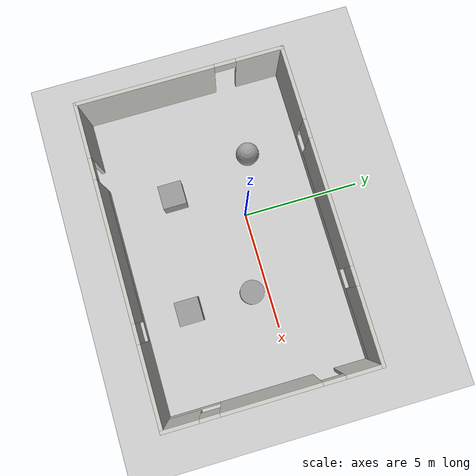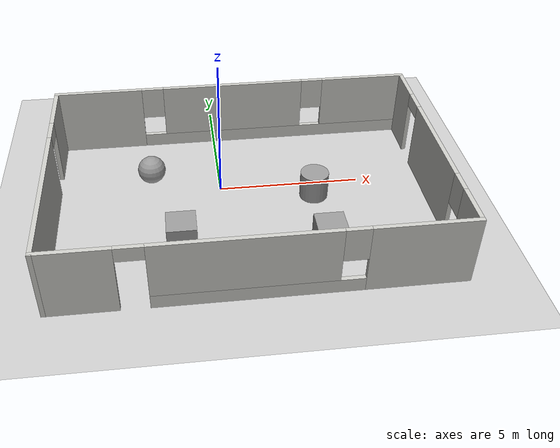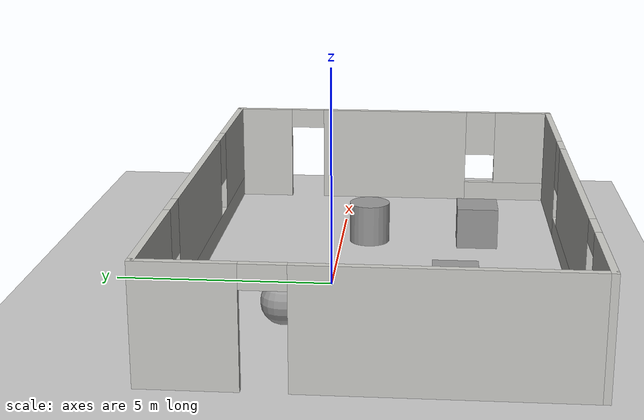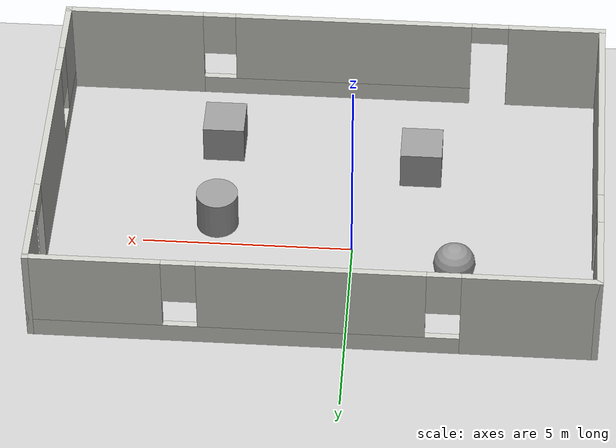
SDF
<sdf version="1.7">
 <world name="default">
  <light name="sun" type="directional">
   <pose>0 0 10 0 -0 0</pose>
   <diffuse>0.8 0.8 0.8 1</diffuse>
   <specular>0.2 0.2 0.2 1</specular>
   <attenuation>
    <range>1000</range>
    <constant>0.9</constant>
    <linear>0.01</linear>
    <quadratic>0.001</quadratic>
   </attenuation>
   <direction>-0.5 0.1 -0.9</direction>
   <spot><inner_angle>0</inner_angle><outer_angle>0</outer_angle><falloff>0</falloff></spot>
  </light>
  <model name="ground_plane">
   <static>1</static>
   <link name="link">
    <collision name="collision">
     <geometry><plane><normal>0 0 1</normal><size>100 100</size></plane></geometry>
     <surface><friction><ode><mu>100</mu><mu2>50</mu2></ode></friction></surface>
    </collision>
    <visual name="visual">
     <cast_shadows>0</cast_shadows>
     <geometry><plane><normal>0 0 1</normal><size>100 100</size></plane></geometry>
     <material>
      <script><uri>file://media/materials/scripts/gazebo.material</uri><name>Gazebo/Grey</name></script>
     </material>
    </visual>
   </link>
  </model>
  <gravity>0 0 -9.8</gravity>
  <magnetic_field>6e-06 2.3e-05 -4.2e-05</magnetic_field>
  <atmosphere type="adiabatic"/>
  <physics type="ode">
   <max_step_size>0.001</max_step_size>
   <real_time_factor>1</real_time_factor>
   <real_time_update_rate>1000</real_time_update_rate>
  </physics>
  <scene><ambient>0.4 0.4 0.4 1</ambient><background>0.7 0.7 0.7 1</background><shadows>1</shadows></scene>
  <audio><device>default</device></audio>
  <spherical_coordinates>
   <surface_model>EARTH_WGS84</surface_model>
   <latitude_deg>0</latitude_deg>
   <longitude_deg>0</longitude_deg>
   <elevation>0</elevation>
   <heading_deg>0</heading_deg>
  </spherical_coordinates>
  <model name="house_1">
   <pose>0.75701 -1.13036 0 0 -0 0</pose>
   <link name="Wall_11">
    <pose>6.55 0 0 0 -0 -1.5708</pose>
    <visual name="Wall_11_Visual_0">
     <pose>-3.6043 0 1.25 0 -0 0</pose>
     <geometry><box><size>1.54141 0.15 2.5</size></box></geometry>
     <material>
      <script><uri>file://media/materials/scripts/gazebo.material</uri><name>Gazebo/CeilingTiled</name></script>
      <ambient>0.52549 0.368627 0.235294 1</ambient>
     </material>
     <meta><layer>0</layer></meta>
    </visual>
    <collision name="Wall_11_Collision_0">
     <geometry><box><size>1.54141 0.15 2.5</size></box></geometry>
     <pose>-3.6043 0 1.25 0 -0 0</pose>
    </collision>
    <visual name="Wall_11_Visual_1">
     <pose>0.062025 0 1.25 0 -0 0</pose>
     <geometry><box><size>3.99124 0.15 2.5</size></box></geometry>
     <material>
      <script><uri>file://media/materials/scripts/gazebo.material</uri><name>Gazebo/CeilingTiled</name></script>
      <ambient>0.52549 0.368627 0.235294 1</ambient>
     </material>
     <meta><layer>0</layer></meta>
    </visual>
    <collision name="Wall_11_Collision_1">
     <geometry><box><size>3.99124 0.15 2.5</size></box></geometry>
     <pose>0.062025 0 1.25 0 -0 0</pose>
    </collision>
    <visual name="Wall_11_Visual_2">
     <pose>3.21632 0 0.25 0 -0 0</pose>
     <geometry><box><size>2.31736 0.15 0.5</size></box></geometry>
     <material>
      <script><uri>file://media/materials/scripts/gazebo.material</uri><name>Gazebo/CeilingTiled</name></script>
      <ambient>0.52549 0.368627 0.235294 1</ambient>
     </material>
     <meta><layer>0</layer></meta>
    </visual>
    <collision name="Wall_11_Collision_2">
     <geometry><box><size>2.31736 0.15 0.5</size></box></geometry>
     <pose>3.21632 0 0.25 0 -0 0</pose>
    </collision>
    <visual name="Wall_11_Visual_3">
     <pose>3.61632 0 1.5 0 -0 0</pose>
     <geometry><box><size>1.51736 0.15 2</size></box></geometry>
     <material>
      <script><uri>file://media/materials/scripts/gazebo.material</uri><name>Gazebo/CeilingTiled</name></script>
      <ambient>0.52549 0.368627 0.235294 1</ambient>
     </material>
     <meta><layer>0</layer></meta>
    </visual>
    <collision name="Wall_11_Collision_3">
     <geometry><box><size>1.51736 0.15 2</size></box></geometry>
     <pose>3.61632 0 1.5 0 -0 0</pose>
    </collision>
    <visual name="Wall_11_Visual_4">
     <pose>2.45764 0 1.9 0 -0 0</pose>
     <geometry><box><size>0.8 0.15 1.2</size></box></geometry>
     <material>
      <script><uri>file://media/materials/scripts/gazebo.material</uri><name>Gazebo/CeilingTiled</name></script>
      <ambient>0.52549 0.368627 0.235294 1</ambient>
     </material>
     <meta><layer>0</layer></meta>
    </visual>
    <collision name="Wall_11_Collision_4">
     <geometry><box><size>0.8 0.15 1.2</size></box></geometry>
     <pose>2.45764 0 1.9 0 -0 0</pose>
    </collision>
    <visual name="Wall_11_Visual_5">
     <pose>-2.38359 0 2.25 0 -0 0</pose>
     <geometry><box><size>0.9 0.15 0.5</size></box></geometry>
     <material>
      <script><uri>file://media/materials/scripts/gazebo.material</uri><name>Gazebo/CeilingTiled</name></script>
      <ambient>0.52549 0.368627 0.235294 1</ambient>
     </material>
     <meta><layer>0</layer></meta>
    </visual>
    <collision name="Wall_11_Collision_5">
     <geometry><box><size>0.9 0.15 0.5</size></box></geometry>
     <pose>-2.38359 0 2.25 0 -0 0</pose>
    </collision>
   </link>
   <link name="Wall_12">
    <pose>-0 -4.3 0 0 -0 3.14159</pose>
    <visual name="Wall_12_Visual_0">
     <pose>-4.93023 0 1.25 0 -0 0</pose>
     <geometry><box><size>3.38954 0.15 2.5</size></box></geometry>
     <material>
      <script><uri>file://media/materials/scripts/gazebo.material</uri><name>Gazebo/CeilingTiled</name></script>
      <ambient>0.52549 0.368627 0.235294 1</ambient>
     </material>
     <meta><layer>0</layer></meta>
    </visual>
    <collision name="Wall_12_Collision_0">
     <geometry><box><size>3.38954 0.15 2.5</size></box></geometry>
     <pose>-4.93023 0 1.25 0 -0 0</pose>
    </collision>
    <visual name="Wall_12_Visual_1">
     <pose>5.44479 0 1.25 0 -0 0</pose>
     <geometry><box><size>2.36041 0.15 2.5</size></box></geometry>
     <material>
      <script><uri>file://media/materials/scripts/gazebo.material</uri><name>Gazebo/CeilingTiled</name></script>
      <ambient>0.52549 0.368627 0.235294 1</ambient>
     </material>
     <meta><layer>0</layer></meta>
    </visual>
    <collision name="Wall_12_Collision_1">
     <geometry><box><size>2.36041 0.15 2.5</size></box></geometry>
     <pose>5.44479 0 1.25 0 -0 0</pose>
    </collision>
    <visual name="Wall_12_Visual_2">
     <pose>0.064564 0 0.25 0 -0 0</pose>
     <geometry><box><size>6.60005 0.15 0.5</size></box></geometry>
     <material>
      <script><uri>file://media/materials/scripts/gazebo.material</uri><name>Gazebo/CeilingTiled</name></script>
      <ambient>0.52549 0.368627 0.235294 1</ambient>
     </material>
     <meta><layer>0</layer></meta>
    </visual>
    <collision name="Wall_12_Collision_2">
     <geometry><box><size>6.60005 0.15 0.5</size></box></geometry>
     <pose>0.064564 0 0.25 0 -0 0</pose>
    </collision>
    <visual name="Wall_12_Visual_3">
     <pose>0.464564 0 1.5 0 -0 0</pose>
     <geometry><box><size>5.80005 0.15 2</size></box></geometry>
     <material>
      <script><uri>file://media/materials/scripts/gazebo.material</uri><name>Gazebo/CeilingTiled</name></script>
      <ambient>0.52549 0.368627 0.235294 1</ambient>
     </material>
     <meta><layer>0</layer></meta>
    </visual>
    <collision name="Wall_12_Collision_3">
     <geometry><box><size>5.80005 0.15 2</size></box></geometry>
     <pose>0.464564 0 1.5 0 -0 0</pose>
    </collision>
    <visual name="Wall_12_Visual_4">
     <pose>-2.83546 0 1.9 0 -0 0</pose>
     <geometry><box><size>0.8 0.15 1.2</size></box></geometry>
     <material>
      <script><uri>file://media/materials/scripts/gazebo.material</uri><name>Gazebo/CeilingTiled</name></script>
      <ambient>0.52549 0.368627 0.235294 1</ambient>
     </material>
     <meta><layer>0</layer></meta>
    </visual>
    <collision name="Wall_12_Collision_4">
     <geometry><box><size>0.8 0.15 1.2</size></box></geometry>
     <pose>-2.83546 0 1.9 0 -0 0</pose>
    </collision>
    <visual name="Wall_12_Visual_5">
     <pose>3.81459 0 2.25 0 -0 0</pose>
     <geometry><box><size>0.9 0.15 0.5</size></box></geometry>
     <material>
      <script><uri>file://media/materials/scripts/gazebo.material</uri><name>Gazebo/CeilingTiled</name></script>
      <ambient>0.52549 0.368627 0.235294 1</ambient>
     </material>
     <meta><layer>0</layer></meta>
    </visual>
    <collision name="Wall_12_Collision_5">
     <geometry><box><size>0.9 0.15 0.5</size></box></geometry>
     <pose>3.81459 0 2.25 0 -0 0</pose>
    </collision>
   </link>
   <link name="Wall_13">
    <pose>-6.55 0 0 0 -0 1.5708</pose>
    <visual name="Wall_13_Visual_0">
     <pose>-1.4601 0 1.25 0 -0 0</pose>
     <geometry><box><size>5.82979 0.15 2.5</size></box></geometry>
     <material>
      <script><uri>file://media/materials/scripts/gazebo.material</uri><name>Gazebo/CeilingTiled</name></script>
      <ambient>0.52549 0.368627 0.235294 1</ambient>
     </material>
     <meta><layer>0</layer></meta>
    </visual>
    <collision name="Wall_13_Collision_0">
     <geometry><box><size>5.82979 0.15 2.5</size></box></geometry>
     <pose>-1.4601 0 1.25 0 -0 0</pose>
    </collision>
    <visual name="Wall_13_Visual_1">
     <pose>3.3649 0 1.25 0 -0 0</pose>
     <geometry><box><size>2.02021 0.15 2.5</size></box></geometry>
     <material>
      <script><uri>file://media/materials/scripts/gazebo.material</uri><name>Gazebo/CeilingTiled</name></script>
      <ambient>0.52549 0.368627 0.235294 1</ambient>
     </material>
     <meta><layer>0</layer></meta>
    </visual>
    <collision name="Wall_13_Collision_1">
     <geometry><box><size>2.02021 0.15 2.5</size></box></geometry>
     <pose>3.3649 0 1.25 0 -0 0</pose>
    </collision>
    <visual name="Wall_13_Visual_2">
     <pose>1.90479 0 2.25 0 -0 0</pose>
     <geometry><box><size>0.9 0.15 0.5</size></box></geometry>
     <material>
      <script><uri>file://media/materials/scripts/gazebo.material</uri><name>Gazebo/CeilingTiled</name></script>
      <ambient>0.52549 0.368627 0.235294 1</ambient>
     </material>
     <meta><layer>0</layer></meta>
    </visual>
    <collision name="Wall_13_Collision_2">
     <geometry><box><size>0.9 0.15 0.5</size></box></geometry>
     <pose>1.90479 0 2.25 0 -0 0</pose>
    </collision>
   </link>
   <link name="Wall_7">
    <pose>-0 4.3 0 0 -0 0</pose>
    <visual name="Wall_7_Visual_0">
     <pose>-5.02079 0 1.25 0 -0 0</pose>
     <geometry><box><size>3.20842 0.15 2.5</size></box></geometry>
     <material>
      <script><uri>file://media/materials/scripts/gazebo.material</uri><name>Gazebo/CeilingTiled</name></script>
      <ambient>0.52549 0.368627 0.235294 1</ambient>
     </material>
     <meta><layer>0</layer></meta>
    </visual>
    <collision name="Wall_7_Collision_0">
     <geometry><box><size>3.20842 0.15 2.5</size></box></geometry>
     <pose>-5.02079 0 1.25 0 -0 0</pose>
    </collision>
    <visual name="Wall_7_Visual_1">
     <pose>1.60421 0 0.25 0 -0 0</pose>
     <geometry><box><size>10.0416 0.15 0.5</size></box></geometry>
     <material>
      <script><uri>file://media/materials/scripts/gazebo.material</uri><name>Gazebo/CeilingTiled</name></script>
      <ambient>0.52549 0.368627 0.235294 1</ambient>
     </material>
     <meta><layer>0</layer></meta>
    </visual>
    <collision name="Wall_7_Collision_1">
     <geometry><box><size>10.0416 0.15 0.5</size></box></geometry>
     <pose>1.60421 0 0.25 0 -0 0</pose>
    </collision>
    <visual name="Wall_7_Visual_2">
     <pose>0.01584 0 1.5 0 -0 0</pose>
     <geometry><box><size>5.26485 0.15 2</size></box></geometry>
     <material>
      <script><uri>file://media/materials/scripts/gazebo.material</uri><name>Gazebo/CeilingTiled</name></script>
      <ambient>0.52549 0.368627 0.235294 1</ambient>
     </material>
     <meta><layer>0</layer></meta>
    </visual>
    <collision name="Wall_7_Collision_2">
     <geometry><box><size>5.26485 0.15 2</size></box></geometry>
     <pose>0.01584 0 1.5 0 -0 0</pose>
    </collision>
    <visual name="Wall_7_Visual_3">
     <pose>5.03663 0 1.5 0 -0 0</pose>
     <geometry><box><size>3.17674 0.15 2</size></box></geometry>
     <material>
      <script><uri>file://media/materials/scripts/gazebo.material</uri><name>Gazebo/CeilingTiled</name></script>
      <ambient>0.52549 0.368627 0.235294 1</ambient>
     </material>
     <meta><layer>0</layer></meta>
    </visual>
    <collision name="Wall_7_Collision_3">
     <geometry><box><size>3.17674 0.15 2</size></box></geometry>
     <pose>5.03663 0 1.5 0 -0 0</pose>
    </collision>
    <visual name="Wall_7_Visual_4">
     <pose>-3.01658 0 1.9 0 -0 0</pose>
     <geometry><box><size>0.8 0.15 1.2</size></box></geometry>
     <material>
      <script><uri>file://media/materials/scripts/gazebo.material</uri><name>Gazebo/CeilingTiled</name></script>
      <ambient>0.52549 0.368627 0.235294 1</ambient>
     </material>
     <meta><layer>0</layer></meta>
    </visual>
    <collision name="Wall_7_Collision_4">
     <geometry><box><size>0.8 0.15 1.2</size></box></geometry>
     <pose>-3.01658 0 1.9 0 -0 0</pose>
    </collision>
    <visual name="Wall_7_Visual_5">
     <pose>3.04826 0 1.9 0 -0 0</pose>
     <geometry><box><size>0.8 0.15 1.2</size></box></geometry>
     <material>
      <script><uri>file://media/materials/scripts/gazebo.material</uri><name>Gazebo/CeilingTiled</name></script>
      <ambient>0.52549 0.368627 0.235294 1</ambient>
     </material>
     <meta><layer>0</layer></meta>
    </visual>
    <collision name="Wall_7_Collision_5">
     <geometry><box><size>0.8 0.15 1.2</size></box></geometry>
     <pose>3.04826 0 1.9 0 -0 0</pose>
    </collision>
   </link>
   <static>1</static>
  </model>
  <model name="unit_box">
   <pose>-1.5313 -2.77158 0.499995 1e-05 -0 0</pose>
   <link name="link">
    <inertial>
     <mass>1</mass>
     <inertia>
      <ixx>0.166667</ixx>
      <ixy>0</ixy>
      <ixz>0</ixz>
      <iyy>0.166667</iyy>
      <iyz>0</iyz>
      <izz>0.166667</izz>
     </inertia>
    </inertial>
    <collision name="collision"><geometry><box><size>1 1 1</size></box></geometry></collision>
    <visual name="visual">
     <geometry><box><size>1 1 1</size></box></geometry>
     <material>
      <script><name>Gazebo/Grey</name><uri>file://media/materials/scripts/gazebo.material</uri></script>
     </material>
    </visual>
   </link>
  </model>
  <model name="unit_cylinder">
   <pose>3.27635 -0.701979 0.499997 3e-06 4e-06 -0</pose>
   <link name="link">
    <inertial>
     <mass>1</mass>
     <inertia><ixx>0.145833</ixx><ixy>0</ixy><ixz>0</ixz><iyy>0.145833</iyy><iyz>0</iyz><izz>0.125</izz></inertia>
    </inertial>
    <collision name="collision">
     <geometry><cylinder><radius>0.5</radius><length>1</length></cylinder></geometry>
    </collision>
    <visual name="visual">
     <geometry><cylinder><radius>0.5</radius><length>1</length></cylinder></geometry>
     <material>
      <script><name>Gazebo/Grey</name><uri>file://media/materials/scripts/gazebo.material</uri></script>
     </material>
    </visual>
   </link>
  </model>
  <model name="unit_box_0">
   <pose>3.31108 -3.39812 0.499995 1e-05 -0 0</pose>
   <link name="link">
    <inertial>
     <mass>1</mass>
     <inertia>
      <ixx>0.166667</ixx>
      <ixy>0</ixy>
      <ixz>0</ixz>
      <iyy>0.166667</iyy>
      <iyz>0</iyz>
      <izz>0.166667</izz>
     </inertia>
    </inertial>
    <collision name="collision"><geometry><box><size>1 1 1</size></box></geometry></collision>
    <visual name="visual">
     <geometry><box><size>1 1 1</size></box></geometry>
     <material>
      <script><name>Gazebo/Grey</name><uri>file://media/materials/scripts/gazebo.material</uri></script>
     </material>
    </visual>
   </link>
  </model>
  <model name="unit_sphere">
   <pose>-2.45875 0.798271 0.5 0 -0 0</pose>
   <link name="link">
    <inertial>
     <mass>1</mass>
     <inertia><ixx>0.1</ixx><ixy>0</ixy><ixz>0</ixz><iyy>0.1</iyy><iyz>0</iyz><izz>0.1</izz></inertia>
    </inertial>
    <collision name="collision"><geometry><sphere><radius>0.5</radius></sphere></geometry></collision>
    <visual name="visual">
     <geometry><sphere><radius>0.5</radius></sphere></geometry>
     <material>
      <script><name>Gazebo/Grey</name><uri>file://media/materials/scripts/gazebo.material</uri></script>
     </material>
    </visual>
   </link>
  </model>
 </world>
</sdf>
